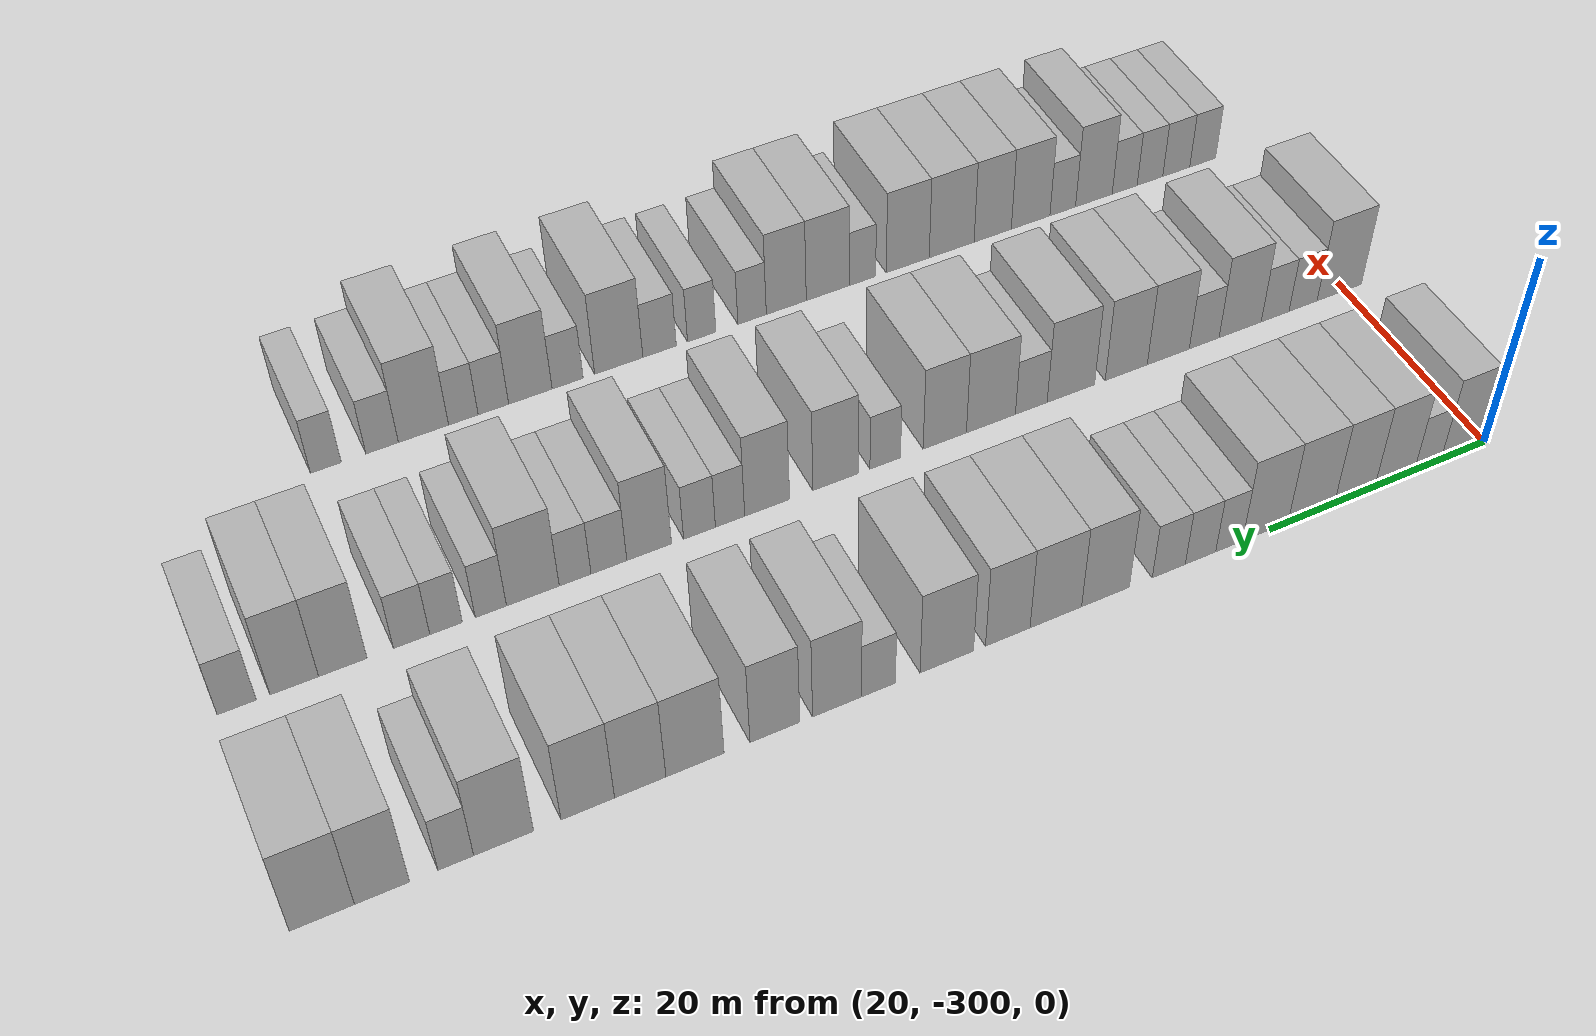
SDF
<sdf version="1.6">
 <world name="default">
  <model name="building_15">
   <static>1</static>
   <pose>25.0000 -297.6987 0 0.000000 0.000000 0.000000</pose>
   <link name="link">
    <pose>0 0 4.50 0 0 0</pose>
    <collision name="collision"><geometry><box><size>10.0000 3.6200 9.0000</size></box></geometry></collision>
    <visual name="visual">
     <cast_shadows>0</cast_shadows>
     <geometry><box><size>10.0000 3.6200 9.0000</size></box></geometry>
     <material>
      <script>
       <uri>model://HANNAS_wall/materials/scripts</uri>
       <uri>model://HANNAS_wall/materials/textures</uri>
       <name>vrc/HANNAS_wall</name>
      </script>
     </material>
    </visual>
   </link>
  </model>
  <model name="building_16">
   <static>1</static>
   <pose>25.0000 -294.6243 0 0.000000 0.000000 0.000000</pose>
   <link name="link">
    <pose>0 0 3.00 0 0 0</pose>
    <collision name="collision"><geometry><box><size>10.0000 2.5290 6.0000</size></box></geometry></collision>
    <visual name="visual">
     <cast_shadows>0</cast_shadows>
     <geometry><box><size>10.0000 2.5290 6.0000</size></box></geometry>
     <material>
      <script>
       <uri>model://HANNAS_wall/materials/scripts</uri>
       <uri>model://HANNAS_wall/materials/textures</uri>
       <name>vrc/HANNAS_wall</name>
      </script>
     </material>
    </visual>
   </link>
  </model>
  <model name="building_17">
   <static>1</static>
   <pose>25.0000 -291.4943 0 0.000000 0.000000 0.000000</pose>
   <link name="link">
    <pose>0 0 4.50 0 0 0</pose>
    <collision name="collision"><geometry><box><size>10.0000 3.7310 9.0000</size></box></geometry></collision>
    <visual name="visual">
     <cast_shadows>0</cast_shadows>
     <geometry><box><size>10.0000 3.7310 9.0000</size></box></geometry>
     <material>
      <script>
       <uri>model://HANNAS_wall/materials/scripts</uri>
       <uri>model://HANNAS_wall/materials/textures</uri>
       <name>vrc/HANNAS_wall</name>
      </script>
     </material>
    </visual>
   </link>
  </model>
  <model name="building_18">
   <static>1</static>
   <pose>25.0000 -287.7493 0 0.000000 0.000000 0.000000</pose>
   <link name="link">
    <pose>0 0 4.50 0 0 0</pose>
    <collision name="collision"><geometry><box><size>10.0000 3.7588 9.0000</size></box></geometry></collision>
    <visual name="visual">
     <cast_shadows>0</cast_shadows>
     <geometry><box><size>10.0000 3.7588 9.0000</size></box></geometry>
     <material>
      <script>
       <uri>model://HANNAS_wall/materials/scripts</uri>
       <uri>model://HANNAS_wall/materials/textures</uri>
       <name>vrc/HANNAS_wall</name>
      </script>
     </material>
    </visual>
   </link>
  </model>
  <model name="building_19">
   <static>1</static>
   <pose>25.0000 -283.7377 0 0.000000 0.000000 0.000000</pose>
   <link name="link">
    <pose>0 0 4.50 0 0 0</pose>
    <collision name="collision"><geometry><box><size>10.0000 4.2644 9.0000</size></box></geometry></collision>
    <visual name="visual">
     <cast_shadows>0</cast_shadows>
     <geometry><box><size>10.0000 4.2644 9.0000</size></box></geometry>
     <material>
      <script>
       <uri>model://HANNAS_wall/materials/scripts</uri>
       <uri>model://HANNAS_wall/materials/textures</uri>
       <name>vrc/HANNAS_wall</name>
      </script>
     </material>
    </visual>
   </link>
  </model>
  <model name="building_20">
   <static>1</static>
   <pose>25.0000 -279.5425 0 0.000000 0.000000 0.000000</pose>
   <link name="link">
    <pose>0 0 4.50 0 0 0</pose>
    <collision name="collision"><geometry><box><size>10.0000 4.1260 9.0000</size></box></geometry></collision>
    <visual name="visual">
     <cast_shadows>0</cast_shadows>
     <geometry><box><size>10.0000 4.1260 9.0000</size></box></geometry>
     <material>
      <script>
       <uri>model://HANNAS_wall/materials/scripts</uri>
       <uri>model://HANNAS_wall/materials/textures</uri>
       <name>vrc/HANNAS_wall</name>
      </script>
     </material>
    </visual>
   </link>
  </model>
  <model name="building_21">
   <static>1</static>
   <pose>25.0000 -276.2781 0 0.000000 0.000000 0.000000</pose>
   <link name="link">
    <pose>0 0 3.00 0 0 0</pose>
    <collision name="collision"><geometry><box><size>10.0000 2.4028 6.0000</size></box></geometry></collision>
    <visual name="visual">
     <cast_shadows>0</cast_shadows>
     <geometry><box><size>10.0000 2.4028 6.0000</size></box></geometry>
     <material>
      <script>
       <uri>model://HANNAS_wall/materials/scripts</uri>
       <uri>model://HANNAS_wall/materials/textures</uri>
       <name>vrc/HANNAS_wall</name>
      </script>
     </material>
    </visual>
   </link>
  </model>
  <model name="building_22">
   <static>1</static>
   <pose>25.0000 -273.7271 0 0.000000 0.000000 0.000000</pose>
   <link name="link">
    <pose>0 0 3.00 0 0 0</pose>
    <collision name="collision"><geometry><box><size>10.0000 2.6993 6.0000</size></box></geometry></collision>
    <visual name="visual">
     <cast_shadows>0</cast_shadows>
     <geometry><box><size>10.0000 2.6993 6.0000</size></box></geometry>
     <material>
      <script>
       <uri>model://HANNAS_wall/materials/scripts</uri>
       <uri>model://HANNAS_wall/materials/textures</uri>
       <name>vrc/HANNAS_wall</name>
      </script>
     </material>
    </visual>
   </link>
  </model>
  <model name="building_23">
   <static>1</static>
   <pose>25.0000 -270.9272 0 0.000000 0.000000 0.000000</pose>
   <link name="link">
    <pose>0 0 3.00 0 0 0</pose>
    <collision name="collision"><geometry><box><size>10.0000 2.9005 6.0000</size></box></geometry></collision>
    <visual name="visual">
     <cast_shadows>0</cast_shadows>
     <geometry><box><size>10.0000 2.9005 6.0000</size></box></geometry>
     <material>
      <script>
       <uri>model://HANNAS_wall/materials/scripts</uri>
       <uri>model://HANNAS_wall/materials/textures</uri>
       <name>vrc/HANNAS_wall</name>
      </script>
     </material>
    </visual>
   </link>
  </model>
  <model name="building_24">
   <static>1</static>
   <pose>25.0000 -265.4210 0 0.000000 0.000000 0.000000</pose>
   <link name="link">
    <pose>0 0 4.50 0 0 0</pose>
    <collision name="collision"><geometry><box><size>10.0000 4.1118 9.0000</size></box></geometry></collision>
    <visual name="visual">
     <cast_shadows>0</cast_shadows>
     <geometry><box><size>10.0000 4.1118 9.0000</size></box></geometry>
     <material>
      <script>
       <uri>model://HANNAS_wall/materials/scripts</uri>
       <uri>model://HANNAS_wall/materials/textures</uri>
       <name>vrc/HANNAS_wall</name>
      </script>
     </material>
    </visual>
   </link>
  </model>
  <model name="building_25">
   <static>1</static>
   <pose>25.0000 -261.1792 0 0.000000 0.000000 0.000000</pose>
   <link name="link">
    <pose>0 0 4.50 0 0 0</pose>
    <collision name="collision"><geometry><box><size>10.0000 4.3719 9.0000</size></box></geometry></collision>
    <visual name="visual">
     <cast_shadows>0</cast_shadows>
     <geometry><box><size>10.0000 4.3719 9.0000</size></box></geometry>
     <material>
      <script>
       <uri>model://HANNAS_wall/materials/scripts</uri>
       <uri>model://HANNAS_wall/materials/textures</uri>
       <name>vrc/HANNAS_wall</name>
      </script>
     </material>
    </visual>
   </link>
  </model>
  <model name="building_26">
   <static>1</static>
   <pose>25.0000 -257.1302 0 0.000000 0.000000 0.000000</pose>
   <link name="link">
    <pose>0 0 4.50 0 0 0</pose>
    <collision name="collision"><geometry><box><size>10.0000 3.7260 9.0000</size></box></geometry></collision>
    <visual name="visual">
     <cast_shadows>0</cast_shadows>
     <geometry><box><size>10.0000 3.7260 9.0000</size></box></geometry>
     <material>
      <script>
       <uri>model://HANNAS_wall/materials/scripts</uri>
       <uri>model://HANNAS_wall/materials/textures</uri>
       <name>vrc/HANNAS_wall</name>
      </script>
     </material>
    </visual>
   </link>
  </model>
  <model name="building_27">
   <static>1</static>
   <pose>25.0000 -252.0744 0 0.000000 0.000000 0.000000</pose>
   <link name="link">
    <pose>0 0 4.50 0 0 0</pose>
    <collision name="collision"><geometry><box><size>10.0000 4.3856 9.0000</size></box></geometry></collision>
    <visual name="visual">
     <cast_shadows>0</cast_shadows>
     <geometry><box><size>10.0000 4.3856 9.0000</size></box></geometry>
     <material>
      <script>
       <uri>model://HANNAS_wall/materials/scripts</uri>
       <uri>model://HANNAS_wall/materials/textures</uri>
       <name>vrc/HANNAS_wall</name>
      </script>
     </material>
    </visual>
   </link>
  </model>
  <model name="building_28">
   <static>1</static>
   <pose>25.0000 -246.5274 0 0.000000 0.000000 0.000000</pose>
   <link name="link">
    <pose>0 0 3.00 0 0 0</pose>
    <collision name="collision"><geometry><box><size>10.0000 2.7085 6.0000</size></box></geometry></collision>
    <visual name="visual">
     <cast_shadows>0</cast_shadows>
     <geometry><box><size>10.0000 2.7085 6.0000</size></box></geometry>
     <material>
      <script>
       <uri>model://HANNAS_wall/materials/scripts</uri>
       <uri>model://HANNAS_wall/materials/textures</uri>
       <name>vrc/HANNAS_wall</name>
      </script>
     </material>
    </visual>
   </link>
  </model>
  <model name="building_29">
   <static>1</static>
   <pose>25.0000 -243.2222 0 0.000000 0.000000 0.000000</pose>
   <link name="link">
    <pose>0 0 4.50 0 0 0</pose>
    <collision name="collision"><geometry><box><size>10.0000 3.9018 9.0000</size></box></geometry></collision>
    <visual name="visual">
     <cast_shadows>0</cast_shadows>
     <geometry><box><size>10.0000 3.9018 9.0000</size></box></geometry>
     <material>
      <script>
       <uri>model://HANNAS_wall/materials/scripts</uri>
       <uri>model://HANNAS_wall/materials/textures</uri>
       <name>vrc/HANNAS_wall</name>
      </script>
     </material>
    </visual>
   </link>
  </model>
  <model name="building_30">
   <static>1</static>
   <pose>25.0000 -238.3244 0 0.000000 0.000000 0.000000</pose>
   <link name="link">
    <pose>0 0 4.50 0 0 0</pose>
    <collision name="collision"><geometry><box><size>10.0000 3.8939 9.0000</size></box></geometry></collision>
    <visual name="visual">
     <cast_shadows>0</cast_shadows>
     <geometry><box><size>10.0000 3.8939 9.0000</size></box></geometry>
     <material>
      <script>
       <uri>model://HANNAS_wall/materials/scripts</uri>
       <uri>model://HANNAS_wall/materials/textures</uri>
       <name>vrc/HANNAS_wall</name>
      </script>
     </material>
    </visual>
   </link>
  </model>
  <model name="building_31">
   <static>1</static>
   <pose>25.0000 -232.1610 0 0.000000 0.000000 0.000000</pose>
   <link name="link">
    <pose>0 0 4.50 0 0 0</pose>
    <collision name="collision"><geometry><box><size>10.0000 4.4328 9.0000</size></box></geometry></collision>
    <visual name="visual">
     <cast_shadows>0</cast_shadows>
     <geometry><box><size>10.0000 4.4328 9.0000</size></box></geometry>
     <material>
      <script>
       <uri>model://HANNAS_wall/materials/scripts</uri>
       <uri>model://HANNAS_wall/materials/textures</uri>
       <name>vrc/HANNAS_wall</name>
      </script>
     </material>
    </visual>
   </link>
  </model>
  <model name="building_32">
   <static>1</static>
   <pose>25.0000 -228.0159 0 0.000000 0.000000 0.000000</pose>
   <link name="link">
    <pose>0 0 4.50 0 0 0</pose>
    <collision name="collision"><geometry><box><size>10.0000 3.8574 9.0000</size></box></geometry></collision>
    <visual name="visual">
     <cast_shadows>0</cast_shadows>
     <geometry><box><size>10.0000 3.8574 9.0000</size></box></geometry>
     <material>
      <script>
       <uri>model://HANNAS_wall/materials/scripts</uri>
       <uri>model://HANNAS_wall/materials/textures</uri>
       <name>vrc/HANNAS_wall</name>
      </script>
     </material>
    </visual>
   </link>
  </model>
  <model name="building_33">
   <static>1</static>
   <pose>25.0000 -224.1071 0 0.000000 0.000000 0.000000</pose>
   <link name="link">
    <pose>0 0 4.50 0 0 0</pose>
    <collision name="collision"><geometry><box><size>10.0000 3.9602 9.0000</size></box></geometry></collision>
    <visual name="visual">
     <cast_shadows>0</cast_shadows>
     <geometry><box><size>10.0000 3.9602 9.0000</size></box></geometry>
     <material>
      <script>
       <uri>model://HANNAS_wall/materials/scripts</uri>
       <uri>model://HANNAS_wall/materials/textures</uri>
       <name>vrc/HANNAS_wall</name>
      </script>
     </material>
    </visual>
   </link>
  </model>
  <model name="building_34">
   <static>1</static>
   <pose>25.0000 -217.9630 0 0.000000 0.000000 0.000000</pose>
   <link name="link">
    <pose>0 0 4.50 0 0 0</pose>
    <collision name="collision"><geometry><box><size>10.0000 4.3278 9.0000</size></box></geometry></collision>
    <visual name="visual">
     <cast_shadows>0</cast_shadows>
     <geometry><box><size>10.0000 4.3278 9.0000</size></box></geometry>
     <material>
      <script>
       <uri>model://HANNAS_wall/materials/scripts</uri>
       <uri>model://HANNAS_wall/materials/textures</uri>
       <name>vrc/HANNAS_wall</name>
      </script>
     </material>
    </visual>
   </link>
  </model>
  <model name="building_35">
   <static>1</static>
   <pose>25.0000 -214.5229 0 0.000000 0.000000 0.000000</pose>
   <link name="link">
    <pose>0 0 3.00 0 0 0</pose>
    <collision name="collision"><geometry><box><size>10.0000 2.5525 6.0000</size></box></geometry></collision>
    <visual name="visual">
     <cast_shadows>0</cast_shadows>
     <geometry><box><size>10.0000 2.5525 6.0000</size></box></geometry>
     <material>
      <script>
       <uri>model://HANNAS_wall/materials/scripts</uri>
       <uri>model://HANNAS_wall/materials/textures</uri>
       <name>vrc/HANNAS_wall</name>
      </script>
     </material>
    </visual>
   </link>
  </model>
  <model name="building_36">
   <static>1</static>
   <pose>25.0000 -209.3218 0 0.000000 0.000000 0.000000</pose>
   <link name="link">
    <pose>0 0 4.50 0 0 0</pose>
    <collision name="collision"><geometry><box><size>10.0000 3.8499 9.0000</size></box></geometry></collision>
    <visual name="visual">
     <cast_shadows>0</cast_shadows>
     <geometry><box><size>10.0000 3.8499 9.0000</size></box></geometry>
     <material>
      <script>
       <uri>model://HANNAS_wall/materials/scripts</uri>
       <uri>model://HANNAS_wall/materials/textures</uri>
       <name>vrc/HANNAS_wall</name>
      </script>
     </material>
    </visual>
   </link>
  </model>
  <model name="building_37">
   <static>1</static>
   <pose>25.0000 -205.1560 0 0.000000 0.000000 0.000000</pose>
   <link name="link">
    <pose>0 0 4.50 0 0 0</pose>
    <collision name="collision"><geometry><box><size>10.0000 4.4816 9.0000</size></box></geometry></collision>
    <visual name="visual">
     <cast_shadows>0</cast_shadows>
     <geometry><box><size>10.0000 4.4816 9.0000</size></box></geometry>
     <material>
      <script>
       <uri>model://HANNAS_wall/materials/scripts</uri>
       <uri>model://HANNAS_wall/materials/textures</uri>
       <name>vrc/HANNAS_wall</name>
      </script>
     </material>
    </visual>
   </link>
  </model>
  <model name="building_196">
   <static>1</static>
   <pose>44.0000 -299.4172 0 0.000000 0.000000 0.000000</pose>
   <link name="link">
    <pose>0 0 4.50 0 0 0</pose>
    <collision name="collision"><geometry><box><size>10.0000 4.4555 9.0000</size></box></geometry></collision>
    <visual name="visual">
     <cast_shadows>0</cast_shadows>
     <geometry><box><size>10.0000 4.4555 9.0000</size></box></geometry>
     <material>
      <script>
       <uri>model://HANNAS_wall/materials/scripts</uri>
       <uri>model://HANNAS_wall/materials/textures</uri>
       <name>vrc/HANNAS_wall</name>
      </script>
     </material>
    </visual>
   </link>
  </model>
  <model name="building_197">
   <static>1</static>
   <pose>44.0000 -295.7909 0 0.000000 0.000000 0.000000</pose>
   <link name="link">
    <pose>0 0 3.00 0 0 0</pose>
    <collision name="collision"><geometry><box><size>10.0000 2.7971 6.0000</size></box></geometry></collision>
    <visual name="visual">
     <cast_shadows>0</cast_shadows>
     <geometry><box><size>10.0000 2.7971 6.0000</size></box></geometry>
     <material>
      <script>
       <uri>model://HANNAS_wall/materials/scripts</uri>
       <uri>model://HANNAS_wall/materials/textures</uri>
       <name>vrc/HANNAS_wall</name>
      </script>
     </material>
    </visual>
   </link>
  </model>
  <model name="building_198">
   <static>1</static>
   <pose>44.0000 -293.0209 0 0.000000 0.000000 0.000000</pose>
   <link name="link">
    <pose>0 0 3.00 0 0 0</pose>
    <collision name="collision"><geometry><box><size>10.0000 2.7428 6.0000</size></box></geometry></collision>
    <visual name="visual">
     <cast_shadows>0</cast_shadows>
     <geometry><box><size>10.0000 2.7428 6.0000</size></box></geometry>
     <material>
      <script>
       <uri>model://HANNAS_wall/materials/scripts</uri>
       <uri>model://HANNAS_wall/materials/textures</uri>
       <name>vrc/HANNAS_wall</name>
      </script>
     </material>
    </visual>
   </link>
  </model>
  <model name="building_199">
   <static>1</static>
   <pose>44.0000 -289.5885 0 0.000000 0.000000 0.000000</pose>
   <link name="link">
    <pose>0 0 4.50 0 0 0</pose>
    <collision name="collision"><geometry><box><size>10.0000 4.1222 9.0000</size></box></geometry></collision>
    <visual name="visual">
     <cast_shadows>0</cast_shadows>
     <geometry><box><size>10.0000 4.1222 9.0000</size></box></geometry>
     <material>
      <script>
       <uri>model://HANNAS_wall/materials/scripts</uri>
       <uri>model://HANNAS_wall/materials/textures</uri>
       <name>vrc/HANNAS_wall</name>
      </script>
     </material>
    </visual>
   </link>
  </model>
  <model name="building_200">
   <static>1</static>
   <pose>44.0000 -286.0852 0 0.000000 0.000000 0.000000</pose>
   <link name="link">
    <pose>0 0 3.00 0 0 0</pose>
    <collision name="collision"><geometry><box><size>10.0000 2.8842 6.0000</size></box></geometry></collision>
    <visual name="visual">
     <cast_shadows>0</cast_shadows>
     <geometry><box><size>10.0000 2.8842 6.0000</size></box></geometry>
     <material>
      <script>
       <uri>model://HANNAS_wall/materials/scripts</uri>
       <uri>model://HANNAS_wall/materials/textures</uri>
       <name>vrc/HANNAS_wall</name>
      </script>
     </material>
    </visual>
   </link>
  </model>
  <model name="building_201">
   <static>1</static>
   <pose>44.0000 -282.6344 0 0.000000 0.000000 0.000000</pose>
   <link name="link">
    <pose>0 0 4.50 0 0 0</pose>
    <collision name="collision"><geometry><box><size>10.0000 4.0174 9.0000</size></box></geometry></collision>
    <visual name="visual">
     <cast_shadows>0</cast_shadows>
     <geometry><box><size>10.0000 4.0174 9.0000</size></box></geometry>
     <material>
      <script>
       <uri>model://HANNAS_wall/materials/scripts</uri>
       <uri>model://HANNAS_wall/materials/textures</uri>
       <name>vrc/HANNAS_wall</name>
      </script>
     </material>
    </visual>
   </link>
  </model>
  <model name="building_202">
   <static>1</static>
   <pose>44.0000 -278.6420 0 0.000000 0.000000 0.000000</pose>
   <link name="link">
    <pose>0 0 4.50 0 0 0</pose>
    <collision name="collision"><geometry><box><size>10.0000 3.9675 9.0000</size></box></geometry></collision>
    <visual name="visual">
     <cast_shadows>0</cast_shadows>
     <geometry><box><size>10.0000 3.9675 9.0000</size></box></geometry>
     <material>
      <script>
       <uri>model://HANNAS_wall/materials/scripts</uri>
       <uri>model://HANNAS_wall/materials/textures</uri>
       <name>vrc/HANNAS_wall</name>
      </script>
     </material>
    </visual>
   </link>
  </model>
  <model name="building_203">
   <static>1</static>
   <pose>44.0000 -273.4587 0 0.000000 0.000000 0.000000</pose>
   <link name="link">
    <pose>0 0 4.50 0 0 0</pose>
    <collision name="collision"><geometry><box><size>10.0000 4.3989 9.0000</size></box></geometry></collision>
    <visual name="visual">
     <cast_shadows>0</cast_shadows>
     <geometry><box><size>10.0000 4.3989 9.0000</size></box></geometry>
     <material>
      <script>
       <uri>model://HANNAS_wall/materials/scripts</uri>
       <uri>model://HANNAS_wall/materials/textures</uri>
       <name>vrc/HANNAS_wall</name>
      </script>
     </material>
    </visual>
   </link>
  </model>
  <model name="building_204">
   <static>1</static>
   <pose>44.0000 -269.8061 0 0.000000 0.000000 0.000000</pose>
   <link name="link">
    <pose>0 0 3.00 0 0 0</pose>
    <collision name="collision"><geometry><box><size>10.0000 2.9062 6.0000</size></box></geometry></collision>
    <visual name="visual">
     <cast_shadows>0</cast_shadows>
     <geometry><box><size>10.0000 2.9062 6.0000</size></box></geometry>
     <material>
      <script>
       <uri>model://HANNAS_wall/materials/scripts</uri>
       <uri>model://HANNAS_wall/materials/textures</uri>
       <name>vrc/HANNAS_wall</name>
      </script>
     </material>
    </visual>
   </link>
  </model>
  <model name="building_205">
   <static>1</static>
   <pose>44.0000 -266.1350 0 0.000000 0.000000 0.000000</pose>
   <link name="link">
    <pose>0 0 4.50 0 0 0</pose>
    <collision name="collision"><geometry><box><size>10.0000 4.4361 9.0000</size></box></geometry></collision>
    <visual name="visual">
     <cast_shadows>0</cast_shadows>
     <geometry><box><size>10.0000 4.4361 9.0000</size></box></geometry>
     <material>
      <script>
       <uri>model://HANNAS_wall/materials/scripts</uri>
       <uri>model://HANNAS_wall/materials/textures</uri>
       <name>vrc/HANNAS_wall</name>
      </script>
     </material>
    </visual>
   </link>
  </model>
  <model name="building_206">
   <static>1</static>
   <pose>44.0000 -261.9862 0 0.000000 0.000000 0.000000</pose>
   <link name="link">
    <pose>0 0 4.50 0 0 0</pose>
    <collision name="collision"><geometry><box><size>10.0000 3.8614 9.0000</size></box></geometry></collision>
    <visual name="visual">
     <cast_shadows>0</cast_shadows>
     <geometry><box><size>10.0000 3.8614 9.0000</size></box></geometry>
     <material>
      <script>
       <uri>model://HANNAS_wall/materials/scripts</uri>
       <uri>model://HANNAS_wall/materials/textures</uri>
       <name>vrc/HANNAS_wall</name>
      </script>
     </material>
    </visual>
   </link>
  </model>
  <model name="building_207">
   <static>1</static>
   <pose>44.0000 -256.7143 0 0.000000 0.000000 0.000000</pose>
   <link name="link">
    <pose>0 0 3.00 0 0 0</pose>
    <collision name="collision"><geometry><box><size>10.0000 2.6825 6.0000</size></box></geometry></collision>
    <visual name="visual">
     <cast_shadows>0</cast_shadows>
     <geometry><box><size>10.0000 2.6825 6.0000</size></box></geometry>
     <material>
      <script>
       <uri>model://HANNAS_wall/materials/scripts</uri>
       <uri>model://HANNAS_wall/materials/textures</uri>
       <name>vrc/HANNAS_wall</name>
      </script>
     </material>
    </visual>
   </link>
  </model>
  <model name="building_208">
   <static>1</static>
   <pose>44.0000 -252.4065 0 0.000000 0.000000 0.000000</pose>
   <link name="link">
    <pose>0 0 4.50 0 0 0</pose>
    <collision name="collision"><geometry><box><size>10.0000 3.9331 9.0000</size></box></geometry></collision>
    <visual name="visual">
     <cast_shadows>0</cast_shadows>
     <geometry><box><size>10.0000 3.9331 9.0000</size></box></geometry>
     <material>
      <script>
       <uri>model://HANNAS_wall/materials/scripts</uri>
       <uri>model://HANNAS_wall/materials/textures</uri>
       <name>vrc/HANNAS_wall</name>
      </script>
     </material>
    </visual>
   </link>
  </model>
  <model name="building_209">
   <static>1</static>
   <pose>44.0000 -246.5434 0 0.000000 0.000000 0.000000</pose>
   <link name="link">
    <pose>0 0 4.50 0 0 0</pose>
    <collision name="collision"><geometry><box><size>10.0000 3.7931 9.0000</size></box></geometry></collision>
    <visual name="visual">
     <cast_shadows>0</cast_shadows>
     <geometry><box><size>10.0000 3.7931 9.0000</size></box></geometry>
     <material>
      <script>
       <uri>model://HANNAS_wall/materials/scripts</uri>
       <uri>model://HANNAS_wall/materials/textures</uri>
       <name>vrc/HANNAS_wall</name>
      </script>
     </material>
    </visual>
   </link>
  </model>
  <model name="building_210">
   <static>1</static>
   <pose>44.0000 -243.4171 0 0.000000 0.000000 0.000000</pose>
   <link name="link">
    <pose>0 0 3.00 0 0 0</pose>
    <collision name="collision"><geometry><box><size>10.0000 2.4595 6.0000</size></box></geometry></collision>
    <visual name="visual">
     <cast_shadows>0</cast_shadows>
     <geometry><box><size>10.0000 2.4595 6.0000</size></box></geometry>
     <material>
      <script>
       <uri>model://HANNAS_wall/materials/scripts</uri>
       <uri>model://HANNAS_wall/materials/textures</uri>
       <name>vrc/HANNAS_wall</name>
      </script>
     </material>
    </visual>
   </link>
  </model>
  <model name="building_211">
   <static>1</static>
   <pose>44.0000 -240.8646 0 0.000000 0.000000 0.000000</pose>
   <link name="link">
    <pose>0 0 3.00 0 0 0</pose>
    <collision name="collision"><geometry><box><size>10.0000 2.6454 6.0000</size></box></geometry></collision>
    <visual name="visual">
     <cast_shadows>0</cast_shadows>
     <geometry><box><size>10.0000 2.6454 6.0000</size></box></geometry>
     <material>
      <script>
       <uri>model://HANNAS_wall/materials/scripts</uri>
       <uri>model://HANNAS_wall/materials/textures</uri>
       <name>vrc/HANNAS_wall</name>
      </script>
     </material>
    </visual>
   </link>
  </model>
  <model name="building_212">
   <static>1</static>
   <pose>44.0000 -236.7159 0 0.000000 0.000000 0.000000</pose>
   <link name="link">
    <pose>0 0 4.50 0 0 0</pose>
    <collision name="collision"><geometry><box><size>10.0000 3.6520 9.0000</size></box></geometry></collision>
    <visual name="visual">
     <cast_shadows>0</cast_shadows>
     <geometry><box><size>10.0000 3.6520 9.0000</size></box></geometry>
     <material>
      <script>
       <uri>model://HANNAS_wall/materials/scripts</uri>
       <uri>model://HANNAS_wall/materials/textures</uri>
       <name>vrc/HANNAS_wall</name>
      </script>
     </material>
    </visual>
   </link>
  </model>
  <model name="building_213">
   <static>1</static>
   <pose>44.0000 -233.4391 0 0.000000 0.000000 0.000000</pose>
   <link name="link">
    <pose>0 0 3.00 0 0 0</pose>
    <collision name="collision"><geometry><box><size>10.0000 2.9016 6.0000</size></box></geometry></collision>
    <visual name="visual">
     <cast_shadows>0</cast_shadows>
     <geometry><box><size>10.0000 2.9016 6.0000</size></box></geometry>
     <material>
      <script>
       <uri>model://HANNAS_wall/materials/scripts</uri>
       <uri>model://HANNAS_wall/materials/textures</uri>
       <name>vrc/HANNAS_wall</name>
      </script>
     </material>
    </visual>
   </link>
  </model>
  <model name="building_214">
   <static>1</static>
   <pose>44.0000 -230.7136 0 0.000000 0.000000 0.000000</pose>
   <link name="link">
    <pose>0 0 3.00 0 0 0</pose>
    <collision name="collision"><geometry><box><size>10.0000 2.5496 6.0000</size></box></geometry></collision>
    <visual name="visual">
     <cast_shadows>0</cast_shadows>
     <geometry><box><size>10.0000 2.5496 6.0000</size></box></geometry>
     <material>
      <script>
       <uri>model://HANNAS_wall/materials/scripts</uri>
       <uri>model://HANNAS_wall/materials/textures</uri>
       <name>vrc/HANNAS_wall</name>
      </script>
     </material>
    </visual>
   </link>
  </model>
  <model name="building_215">
   <static>1</static>
   <pose>44.0000 -227.3470 0 0.000000 0.000000 0.000000</pose>
   <link name="link">
    <pose>0 0 4.50 0 0 0</pose>
    <collision name="collision"><geometry><box><size>10.0000 4.1837 9.0000</size></box></geometry></collision>
    <visual name="visual">
     <cast_shadows>0</cast_shadows>
     <geometry><box><size>10.0000 4.1837 9.0000</size></box></geometry>
     <material>
      <script>
       <uri>model://HANNAS_wall/materials/scripts</uri>
       <uri>model://HANNAS_wall/materials/textures</uri>
       <name>vrc/HANNAS_wall</name>
      </script>
     </material>
    </visual>
   </link>
  </model>
  <model name="building_216">
   <static>1</static>
   <pose>44.0000 -224.0337 0 0.000000 0.000000 0.000000</pose>
   <link name="link">
    <pose>0 0 3.00 0 0 0</pose>
    <collision name="collision"><geometry><box><size>10.0000 2.4429 6.0000</size></box></geometry></collision>
    <visual name="visual">
     <cast_shadows>0</cast_shadows>
     <geometry><box><size>10.0000 2.4429 6.0000</size></box></geometry>
     <material>
      <script>
       <uri>model://HANNAS_wall/materials/scripts</uri>
       <uri>model://HANNAS_wall/materials/textures</uri>
       <name>vrc/HANNAS_wall</name>
      </script>
     </material>
    </visual>
   </link>
  </model>
  <model name="building_217">
   <static>1</static>
   <pose>44.0000 -220.5527 0 0.000000 0.000000 0.000000</pose>
   <link name="link">
    <pose>0 0 3.00 0 0 0</pose>
    <collision name="collision"><geometry><box><size>10.0000 2.5191 6.0000</size></box></geometry></collision>
    <visual name="visual">
     <cast_shadows>0</cast_shadows>
     <geometry><box><size>10.0000 2.5191 6.0000</size></box></geometry>
     <material>
      <script>
       <uri>model://HANNAS_wall/materials/scripts</uri>
       <uri>model://HANNAS_wall/materials/textures</uri>
       <name>vrc/HANNAS_wall</name>
      </script>
     </material>
    </visual>
   </link>
  </model>
  <model name="building_218">
   <static>1</static>
   <pose>44.0000 -217.8996 0 0.000000 0.000000 0.000000</pose>
   <link name="link">
    <pose>0 0 3.00 0 0 0</pose>
    <collision name="collision"><geometry><box><size>10.0000 2.7872 6.0000</size></box></geometry></collision>
    <visual name="visual">
     <cast_shadows>0</cast_shadows>
     <geometry><box><size>10.0000 2.7872 6.0000</size></box></geometry>
     <material>
      <script>
       <uri>model://HANNAS_wall/materials/scripts</uri>
       <uri>model://HANNAS_wall/materials/textures</uri>
       <name>vrc/HANNAS_wall</name>
      </script>
     </material>
    </visual>
   </link>
  </model>
  <model name="building_219">
   <static>1</static>
   <pose>44.0000 -212.6824 0 0.000000 0.000000 0.000000</pose>
   <link name="link">
    <pose>0 0 4.50 0 0 0</pose>
    <collision name="collision"><geometry><box><size>10.0000 3.6471 9.0000</size></box></geometry></collision>
    <visual name="visual">
     <cast_shadows>0</cast_shadows>
     <geometry><box><size>10.0000 3.6471 9.0000</size></box></geometry>
     <material>
      <script>
       <uri>model://HANNAS_wall/materials/scripts</uri>
       <uri>model://HANNAS_wall/materials/textures</uri>
       <name>vrc/HANNAS_wall</name>
      </script>
     </material>
    </visual>
   </link>
  </model>
  <model name="building_220">
   <static>1</static>
   <pose>44.0000 -209.0541 0 0.000000 0.000000 0.000000</pose>
   <link name="link">
    <pose>0 0 4.50 0 0 0</pose>
    <collision name="collision"><geometry><box><size>10.0000 3.6095 9.0000</size></box></geometry></collision>
    <visual name="visual">
     <cast_shadows>0</cast_shadows>
     <geometry><box><size>10.0000 3.6095 9.0000</size></box></geometry>
     <material>
      <script>
       <uri>model://HANNAS_wall/materials/scripts</uri>
       <uri>model://HANNAS_wall/materials/textures</uri>
       <name>vrc/HANNAS_wall</name>
      </script>
     </material>
    </visual>
   </link>
  </model>
  <model name="building_221">
   <static>1</static>
   <pose>44.0000 -204.8148 0 0.000000 0.000000 0.000000</pose>
   <link name="link">
    <pose>0 0 3.00 0 0 0</pose>
    <collision name="collision"><geometry><box><size>10.0000 2.8692 6.0000</size></box></geometry></collision>
    <visual name="visual">
     <cast_shadows>0</cast_shadows>
     <geometry><box><size>10.0000 2.8692 6.0000</size></box></geometry>
     <material>
      <script>
       <uri>model://HANNAS_wall/materials/scripts</uri>
       <uri>model://HANNAS_wall/materials/textures</uri>
       <name>vrc/HANNAS_wall</name>
      </script>
     </material>
    </visual>
   </link>
  </model>
  <model name="building_357">
   <static>1</static>
   <pose>63.0000 -297.9496 0 0.000000 0.000000 0.000000</pose>
   <link name="link">
    <pose>0 0 3.00 0 0 0</pose>
    <collision name="collision"><geometry><box><size>10.0000 2.6879 6.0000</size></box></geometry></collision>
    <visual name="visual">
     <cast_shadows>0</cast_shadows>
     <geometry><box><size>10.0000 2.6879 6.0000</size></box></geometry>
     <material>
      <script>
       <uri>model://HANNAS_wall/materials/scripts</uri>
       <uri>model://HANNAS_wall/materials/textures</uri>
       <name>vrc/HANNAS_wall</name>
      </script>
     </material>
    </visual>
   </link>
  </model>
  <model name="building_358">
   <static>1</static>
   <pose>63.0000 -295.2091 0 0.000000 0.000000 0.000000</pose>
   <link name="link">
    <pose>0 0 3.00 0 0 0</pose>
    <collision name="collision"><geometry><box><size>10.0000 2.7932 6.0000</size></box></geometry></collision>
    <visual name="visual">
     <cast_shadows>0</cast_shadows>
     <geometry><box><size>10.0000 2.7932 6.0000</size></box></geometry>
     <material>
      <script>
       <uri>model://HANNAS_wall/materials/scripts</uri>
       <uri>model://HANNAS_wall/materials/textures</uri>
       <name>vrc/HANNAS_wall</name>
      </script>
     </material>
    </visual>
   </link>
  </model>
  <model name="building_359">
   <static>1</static>
   <pose>63.0000 -292.4930 0 0.000000 0.000000 0.000000</pose>
   <link name="link">
    <pose>0 0 3.00 0 0 0</pose>
    <collision name="collision"><geometry><box><size>10.0000 2.6389 6.0000</size></box></geometry></collision>
    <visual name="visual">
     <cast_shadows>0</cast_shadows>
     <geometry><box><size>10.0000 2.6389 6.0000</size></box></geometry>
     <material>
      <script>
       <uri>model://HANNAS_wall/materials/scripts</uri>
       <uri>model://HANNAS_wall/materials/textures</uri>
       <name>vrc/HANNAS_wall</name>
      </script>
     </material>
    </visual>
   </link>
  </model>
  <model name="building_360">
   <static>1</static>
   <pose>63.0000 -289.9039 0 0.000000 0.000000 0.000000</pose>
   <link name="link">
    <pose>0 0 3.00 0 0 0</pose>
    <collision name="collision"><geometry><box><size>10.0000 2.5393 6.0000</size></box></geometry></collision>
    <visual name="visual">
     <cast_shadows>0</cast_shadows>
     <geometry><box><size>10.0000 2.5393 6.0000</size></box></geometry>
     <material>
      <script>
       <uri>model://HANNAS_wall/materials/scripts</uri>
       <uri>model://HANNAS_wall/materials/textures</uri>
       <name>vrc/HANNAS_wall</name>
      </script>
     </material>
    </visual>
   </link>
  </model>
  <model name="building_361">
   <static>1</static>
   <pose>63.0000 -286.7836 0 0.000000 0.000000 0.000000</pose>
   <link name="link">
    <pose>0 0 4.50 0 0 0</pose>
    <collision name="collision"><geometry><box><size>10.0000 3.7015 9.0000</size></box></geometry></collision>
    <visual name="visual">
     <cast_shadows>0</cast_shadows>
     <geometry><box><size>10.0000 3.7015 9.0000</size></box></geometry>
     <material>
      <script>
       <uri>model://HANNAS_wall/materials/scripts</uri>
       <uri>model://HANNAS_wall/materials/textures</uri>
       <name>vrc/HANNAS_wall</name>
      </script>
     </material>
    </visual>
   </link>
  </model>
  <model name="building_362">
   <static>1</static>
   <pose>63.0000 -283.6491 0 0.000000 0.000000 0.000000</pose>
   <link name="link">
    <pose>0 0 3.00 0 0 0</pose>
    <collision name="collision"><geometry><box><size>10.0000 2.5674 6.0000</size></box></geometry></collision>
    <visual name="visual">
     <cast_shadows>0</cast_shadows>
     <geometry><box><size>10.0000 2.5674 6.0000</size></box></geometry>
     <material>
      <script>
       <uri>model://HANNAS_wall/materials/scripts</uri>
       <uri>model://HANNAS_wall/materials/textures</uri>
       <name>vrc/HANNAS_wall</name>
      </script>
     </material>
    </visual>
   </link>
  </model>
  <model name="building_363">
   <static>1</static>
   <pose>63.0000 -280.4525 0 0.000000 0.000000 0.000000</pose>
   <link name="link">
    <pose>0 0 4.50 0 0 0</pose>
    <collision name="collision"><geometry><box><size>10.0000 3.8259 9.0000</size></box></geometry></collision>
    <visual name="visual">
     <cast_shadows>0</cast_shadows>
     <geometry><box><size>10.0000 3.8259 9.0000</size></box></geometry>
     <material>
      <script>
       <uri>model://HANNAS_wall/materials/scripts</uri>
       <uri>model://HANNAS_wall/materials/textures</uri>
       <name>vrc/HANNAS_wall</name>
      </script>
     </material>
    </visual>
   </link>
  </model>
  <model name="building_364">
   <static>1</static>
   <pose>63.0000 -276.7176 0 0.000000 0.000000 0.000000</pose>
   <link name="link">
    <pose>0 0 4.50 0 0 0</pose>
    <collision name="collision"><geometry><box><size>10.0000 3.6439 9.0000</size></box></geometry></collision>
    <visual name="visual">
     <cast_shadows>0</cast_shadows>
     <geometry><box><size>10.0000 3.6439 9.0000</size></box></geometry>
     <material>
      <script>
       <uri>model://HANNAS_wall/materials/scripts</uri>
       <uri>model://HANNAS_wall/materials/textures</uri>
       <name>vrc/HANNAS_wall</name>
      </script>
     </material>
    </visual>
   </link>
  </model>
  <model name="building_365">
   <static>1</static>
   <pose>63.0000 -272.7255 0 0.000000 0.000000 0.000000</pose>
   <link name="link">
    <pose>0 0 4.50 0 0 0</pose>
    <collision name="collision"><geometry><box><size>10.0000 4.3401 9.0000</size></box></geometry></collision>
    <visual name="visual">
     <cast_shadows>0</cast_shadows>
     <geometry><box><size>10.0000 4.3401 9.0000</size></box></geometry>
     <material>
      <script>
       <uri>model://HANNAS_wall/materials/scripts</uri>
       <uri>model://HANNAS_wall/materials/textures</uri>
       <name>vrc/HANNAS_wall</name>
      </script>
     </material>
    </visual>
   </link>
  </model>
  <model name="building_366">
   <static>1</static>
   <pose>63.0000 -268.5079 0 0.000000 0.000000 0.000000</pose>
   <link name="link">
    <pose>0 0 4.50 0 0 0</pose>
    <collision name="collision"><geometry><box><size>10.0000 4.0951 9.0000</size></box></geometry></collision>
    <visual name="visual">
     <cast_shadows>0</cast_shadows>
     <geometry><box><size>10.0000 4.0951 9.0000</size></box></geometry>
     <material>
      <script>
       <uri>model://HANNAS_wall/materials/scripts</uri>
       <uri>model://HANNAS_wall/materials/textures</uri>
       <name>vrc/HANNAS_wall</name>
      </script>
     </material>
    </visual>
   </link>
  </model>
  <model name="building_367">
   <static>1</static>
   <pose>63.0000 -264.2327 0 0.000000 0.000000 0.000000</pose>
   <link name="link">
    <pose>0 0 3.00 0 0 0</pose>
    <collision name="collision"><geometry><box><size>10.0000 2.4554 6.0000</size></box></geometry></collision>
    <visual name="visual">
     <cast_shadows>0</cast_shadows>
     <geometry><box><size>10.0000 2.4554 6.0000</size></box></geometry>
     <material>
      <script>
       <uri>model://HANNAS_wall/materials/scripts</uri>
       <uri>model://HANNAS_wall/materials/textures</uri>
       <name>vrc/HANNAS_wall</name>
      </script>
     </material>
    </visual>
   </link>
  </model>
  <model name="building_368">
   <static>1</static>
   <pose>63.0000 -260.9843 0 0.000000 0.000000 0.000000</pose>
   <link name="link">
    <pose>0 0 4.50 0 0 0</pose>
    <collision name="collision"><geometry><box><size>10.0000 4.0413 9.0000</size></box></geometry></collision>
    <visual name="visual">
     <cast_shadows>0</cast_shadows>
     <geometry><box><size>10.0000 4.0413 9.0000</size></box></geometry>
     <material>
      <script>
       <uri>model://HANNAS_wall/materials/scripts</uri>
       <uri>model://HANNAS_wall/materials/textures</uri>
       <name>vrc/HANNAS_wall</name>
      </script>
     </material>
    </visual>
   </link>
  </model>
  <model name="building_369">
   <static>1</static>
   <pose>63.0000 -257.1233 0 0.000000 0.000000 0.000000</pose>
   <link name="link">
    <pose>0 0 4.50 0 0 0</pose>
    <collision name="collision"><geometry><box><size>10.0000 3.6806 9.0000</size></box></geometry></collision>
    <visual name="visual">
     <cast_shadows>0</cast_shadows>
     <geometry><box><size>10.0000 3.6806 9.0000</size></box></geometry>
     <material>
      <script>
       <uri>model://HANNAS_wall/materials/scripts</uri>
       <uri>model://HANNAS_wall/materials/textures</uri>
       <name>vrc/HANNAS_wall</name>
      </script>
     </material>
    </visual>
   </link>
  </model>
  <model name="building_370">
   <static>1</static>
   <pose>63.0000 -253.9875 0 0.000000 0.000000 0.000000</pose>
   <link name="link">
    <pose>0 0 3.00 0 0 0</pose>
    <collision name="collision"><geometry><box><size>10.0000 2.5911 6.0000</size></box></geometry></collision>
    <visual name="visual">
     <cast_shadows>0</cast_shadows>
     <geometry><box><size>10.0000 2.5911 6.0000</size></box></geometry>
     <material>
      <script>
       <uri>model://HANNAS_wall/materials/scripts</uri>
       <uri>model://HANNAS_wall/materials/textures</uri>
       <name>vrc/HANNAS_wall</name>
      </script>
     </material>
    </visual>
   </link>
  </model>
  <model name="building_371">
   <static>1</static>
   <pose>63.0000 -249.4212 0 0.000000 0.000000 0.000000</pose>
   <link name="link">
    <pose>0 0 3.00 0 0 0</pose>
    <collision name="collision"><geometry><box><size>10.0000 2.5414 6.0000</size></box></geometry></collision>
    <visual name="visual">
     <cast_shadows>0</cast_shadows>
     <geometry><box><size>10.0000 2.5414 6.0000</size></box></geometry>
     <material>
      <script>
       <uri>model://HANNAS_wall/materials/scripts</uri>
       <uri>model://HANNAS_wall/materials/textures</uri>
       <name>vrc/HANNAS_wall</name>
      </script>
     </material>
    </visual>
   </link>
  </model>
  <model name="building_372">
   <static>1</static>
   <pose>63.0000 -245.6654 0 0.000000 0.000000 0.000000</pose>
   <link name="link">
    <pose>0 0 3.00 0 0 0</pose>
    <collision name="collision"><geometry><box><size>10.0000 2.9702 6.0000</size></box></geometry></collision>
    <visual name="visual">
     <cast_shadows>0</cast_shadows>
     <geometry><box><size>10.0000 2.9702 6.0000</size></box></geometry>
     <material>
      <script>
       <uri>model://HANNAS_wall/materials/scripts</uri>
       <uri>model://HANNAS_wall/materials/textures</uri>
       <name>vrc/HANNAS_wall</name>
      </script>
     </material>
    </visual>
   </link>
  </model>
  <model name="building_373">
   <static>1</static>
   <pose>63.0000 -242.0650 0 0.000000 0.000000 0.000000</pose>
   <link name="link">
    <pose>0 0 4.50 0 0 0</pose>
    <collision name="collision"><geometry><box><size>10.0000 4.2307 9.0000</size></box></geometry></collision>
    <visual name="visual">
     <cast_shadows>0</cast_shadows>
     <geometry><box><size>10.0000 4.2307 9.0000</size></box></geometry>
     <material>
      <script>
       <uri>model://HANNAS_wall/materials/scripts</uri>
       <uri>model://HANNAS_wall/materials/textures</uri>
       <name>vrc/HANNAS_wall</name>
      </script>
     </material>
    </visual>
   </link>
  </model>
  <model name="building_374">
   <static>1</static>
   <pose>63.0000 -237.6075 0 0.000000 0.000000 0.000000</pose>
   <link name="link">
    <pose>0 0 3.00 0 0 0</pose>
    <collision name="collision"><geometry><box><size>10.0000 2.6843 6.0000</size></box></geometry></collision>
    <visual name="visual">
     <cast_shadows>0</cast_shadows>
     <geometry><box><size>10.0000 2.6843 6.0000</size></box></geometry>
     <material>
      <script>
       <uri>model://HANNAS_wall/materials/scripts</uri>
       <uri>model://HANNAS_wall/materials/textures</uri>
       <name>vrc/HANNAS_wall</name>
      </script>
     </material>
    </visual>
   </link>
  </model>
  <model name="building_375">
   <static>1</static>
   <pose>63.0000 -234.4089 0 0.000000 0.000000 0.000000</pose>
   <link name="link">
    <pose>0 0 4.50 0 0 0</pose>
    <collision name="collision"><geometry><box><size>10.0000 3.7128 9.0000</size></box></geometry></collision>
    <visual name="visual">
     <cast_shadows>0</cast_shadows>
     <geometry><box><size>10.0000 3.7128 9.0000</size></box></geometry>
     <material>
      <script>
       <uri>model://HANNAS_wall/materials/scripts</uri>
       <uri>model://HANNAS_wall/materials/textures</uri>
       <name>vrc/HANNAS_wall</name>
      </script>
     </material>
    </visual>
   </link>
  </model>
  <model name="building_376">
   <static>1</static>
   <pose>63.0000 -231.2588 0 0.000000 0.000000 0.000000</pose>
   <link name="link">
    <pose>0 0 3.00 0 0 0</pose>
    <collision name="collision"><geometry><box><size>10.0000 2.5875 6.0000</size></box></geometry></collision>
    <visual name="visual">
     <cast_shadows>0</cast_shadows>
     <geometry><box><size>10.0000 2.5875 6.0000</size></box></geometry>
     <material>
      <script>
       <uri>model://HANNAS_wall/materials/scripts</uri>
       <uri>model://HANNAS_wall/materials/textures</uri>
       <name>vrc/HANNAS_wall</name>
      </script>
     </material>
    </visual>
   </link>
  </model>
  <model name="building_377">
   <static>1</static>
   <pose>63.0000 -228.7194 0 0.000000 0.000000 0.000000</pose>
   <link name="link">
    <pose>0 0 3.00 0 0 0</pose>
    <collision name="collision"><geometry><box><size>10.0000 2.4914 6.0000</size></box></geometry></collision>
    <visual name="visual">
     <cast_shadows>0</cast_shadows>
     <geometry><box><size>10.0000 2.4914 6.0000</size></box></geometry>
     <material>
      <script>
       <uri>model://HANNAS_wall/materials/scripts</uri>
       <uri>model://HANNAS_wall/materials/textures</uri>
       <name>vrc/HANNAS_wall</name>
      </script>
     </material>
    </visual>
   </link>
  </model>
  <model name="building_378">
   <static>1</static>
   <pose>63.0000 -225.3914 0 0.000000 0.000000 0.000000</pose>
   <link name="link">
    <pose>0 0 4.50 0 0 0</pose>
    <collision name="collision"><geometry><box><size>10.0000 4.1645 9.0000</size></box></geometry></collision>
    <visual name="visual">
     <cast_shadows>0</cast_shadows>
     <geometry><box><size>10.0000 4.1645 9.0000</size></box></geometry>
     <material>
      <script>
       <uri>model://HANNAS_wall/materials/scripts</uri>
       <uri>model://HANNAS_wall/materials/textures</uri>
       <name>vrc/HANNAS_wall</name>
      </script>
     </material>
    </visual>
   </link>
  </model>
  <model name="building_379">
   <static>1</static>
   <pose>63.0000 -221.9703 0 0.000000 0.000000 0.000000</pose>
   <link name="link">
    <pose>0 0 3.00 0 0 0</pose>
    <collision name="collision"><geometry><box><size>10.0000 2.6778 6.0000</size></box></geometry></collision>
    <visual name="visual">
     <cast_shadows>0</cast_shadows>
     <geometry><box><size>10.0000 2.6778 6.0000</size></box></geometry>
     <material>
      <script>
       <uri>model://HANNAS_wall/materials/scripts</uri>
       <uri>model://HANNAS_wall/materials/textures</uri>
       <name>vrc/HANNAS_wall</name>
      </script>
     </material>
    </visual>
   </link>
  </model>
  <model name="building_380">
   <static>1</static>
   <pose>63.0000 -217.3819 0 0.000000 0.000000 0.000000</pose>
   <link name="link">
    <pose>0 0 3.00 0 0 0</pose>
    <collision name="collision"><geometry><box><size>10.0000 2.4989 6.0000</size></box></geometry></collision>
    <visual name="visual">
     <cast_shadows>0</cast_shadows>
     <geometry><box><size>10.0000 2.4989 6.0000</size></box></geometry>
     <material>
      <script>
       <uri>model://HANNAS_wall/materials/scripts</uri>
       <uri>model://HANNAS_wall/materials/textures</uri>
       <name>vrc/HANNAS_wall</name>
      </script>
     </material>
    </visual>
   </link>
  </model>
 </world>
</sdf>
